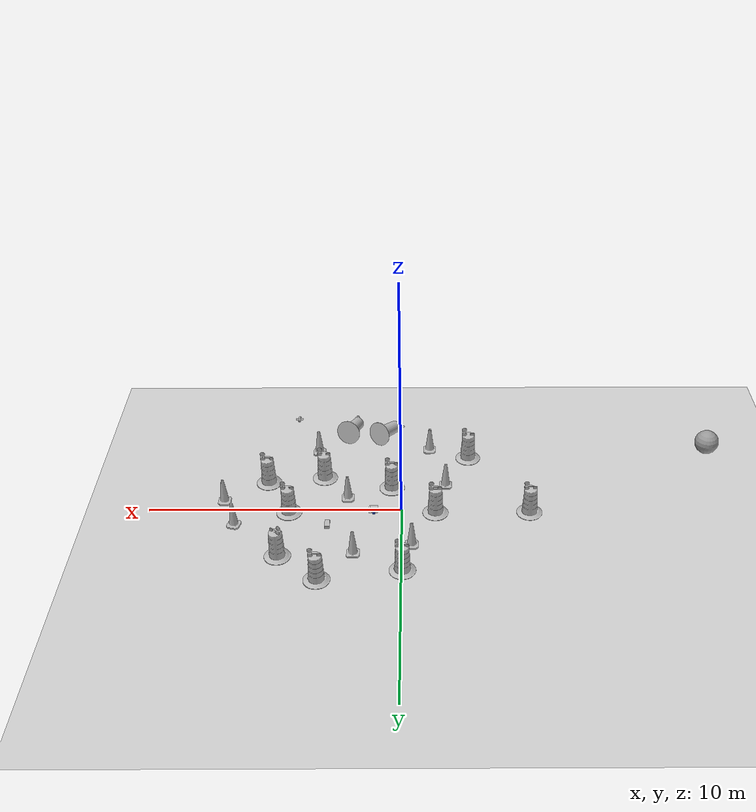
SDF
<sdf version="1.7">
 <world name="default">
  <light name="sun" type="directional">
   <pose>0 0 10 0 -0 0</pose>
   <diffuse>0.8 0.8 0.8 1</diffuse>
   <specular>0.2 0.2 0.2 1</specular>
   <attenuation>
    <range>1000</range>
    <constant>0.9</constant>
    <linear>0.01</linear>
    <quadratic>0.001</quadratic>
   </attenuation>
   <direction>-0.5 0.1 -0.9</direction>
   <spot><inner_angle>0</inner_angle><outer_angle>0</outer_angle><falloff>0</falloff></spot>
  </light>
  <model name="ground_plane">
   <static>1</static>
   <link name="link">
    <collision name="collision">
     <geometry><plane><normal>0 0 1</normal><size>100 100</size></plane></geometry>
     <surface><friction><ode><mu>100</mu><mu2>50</mu2></ode></friction></surface>
    </collision>
    <visual name="visual">
     <cast_shadows>0</cast_shadows>
     <geometry><plane><normal>0 0 1</normal><size>100 100</size></plane></geometry>
     <material>
      <script><uri>file://media/materials/scripts/gazebo.material</uri><name>Gazebo/Grey</name></script>
     </material>
    </visual>
   </link>
  </model>
  <gravity>0 0 -9.8</gravity>
  <magnetic_field>6e-06 2.3e-05 -4.2e-05</magnetic_field>
  <atmosphere type="adiabatic"/>
  <physics type="ode">
   <max_step_size>0.001</max_step_size>
   <real_time_factor>1</real_time_factor>
   <real_time_update_rate>1000</real_time_update_rate>
  </physics>
  <scene><ambient>0.4 0.4 0.4 1</ambient><background>0.7 0.7 0.7 1</background><shadows>1</shadows></scene>
  <audio><device>default</device></audio>
  <spherical_coordinates>
   <surface_model>EARTH_WGS84</surface_model>
   <latitude_deg>0</latitude_deg>
   <longitude_deg>0</longitude_deg>
   <elevation>0</elevation>
   <heading_deg>0</heading_deg>
  </spherical_coordinates>
  <model name="my_bot">
   <link name="base_link">
    <inertial>
     <pose>0.065 0 0.0625 0 -0 0</pose>
     <mass>0.6</mass>
     <inertia>
      <ixx>0.00525625</ixx>
      <ixy>0</ixy>
      <ixz>0.0005625</ixz>
      <iyy>0.00593125</iyy>
      <iyz>0</iyz>
      <izz>0.008275</izz>
     </inertia>
    </inertial>
    <collision name="base_link_fixed_joint_lump__chassis_collision">
     <pose>0.05 0 0.075 0 -0 0</pose>
     <geometry><box><size>0.3 0.3 0.15</size></box></geometry>
    </collision>
    <collision name="base_link_fixed_joint_lump__caster_wheel_collision_1">
     <pose>0.14 0 0 0 -0 0</pose>
     <geometry><sphere><radius>0.05</radius></sphere></geometry>
     <surface><friction><ode><mu>0.001</mu><mu2>0.001</mu2></ode></friction></surface>
    </collision>
    <visual name="base_link_visual">
     <pose>0 0 0.075 0 -0 0</pose>
     <geometry><box><size>0.3 0.3 0.15</size></box></geometry>
    </visual>
    <visual name="base_link_fixed_joint_lump__chassis_visual_1">
     <pose>0.05 0 0.075 0 -0 0</pose>
     <geometry><box><size>0.3 0.3 0.15</size></box></geometry>
     <material>
      <script><name>Gazebo/white</name><uri>file://media/materials/scripts/gazebo.material</uri></script>
     </material>
    </visual>
    <visual name="base_link_fixed_joint_lump__caster_wheel_visual_2">
     <pose>0.14 0 0 0 -0 0</pose>
     <geometry><sphere><radius>0.05</radius></sphere></geometry>
     <material>
      <script><name>Gazebo/Black</name><uri>file://media/materials/scripts/gazebo.material</uri></script>
     </material>
    </visual>
   </link>
   <joint name="left_wheel_joint" type="revolute">
    <pose relative_to="base_link">0 0.175 0 -1.5708 0 0</pose>
    <parent>base_link</parent>
    <child>left_wheel</child>
    <axis>
     <xyz>0 0 1</xyz>
     <limit><lower>-1e+16</lower><upper>1e+16</upper></limit>
     <dynamics><spring_reference>0</spring_reference><spring_stiffness>0</spring_stiffness></dynamics>
    </axis>
   </joint>
   <link name="left_wheel">
    <pose relative_to="left_wheel_joint">0 0 0 0 -0 0</pose>
    <inertial>
     <mass>0.1</mass>
     <inertia>
      <ixx>7.58333e-05</ixx>
      <ixy>0</ixy>
      <ixz>0</ixz>
      <iyy>7.58333e-05</iyy>
      <iyz>0</iyz>
      <izz>0.000125</izz>
     </inertia>
    </inertial>
    <collision name="left_wheel_collision">
     <geometry><cylinder><length>0.04</length><radius>0.05</radius></cylinder></geometry>
    </collision>
    <visual name="left_wheel_visual">
     <geometry><cylinder><length>0.04</length><radius>0.05</radius></cylinder></geometry>
     <material>
      <script><name>Gazebo/Blue</name><uri>file://media/materials/scripts/gazebo.material</uri></script>
     </material>
    </visual>
   </link>
   <joint name="right_wheel_joint" type="revolute">
    <pose relative_to="base_link">0 -0.175 0 1.5708 -0 0</pose>
    <parent>base_link</parent>
    <child>right_wheel</child>
    <axis>
     <xyz>0 0 -1</xyz>
     <limit><lower>-1e+16</lower><upper>1e+16</upper></limit>
     <dynamics><spring_reference>0</spring_reference><spring_stiffness>0</spring_stiffness></dynamics>
    </axis>
   </joint>
   <link name="right_wheel">
    <pose relative_to="right_wheel_joint">0 0 0 0 -0 0</pose>
    <inertial>
     <mass>0.1</mass>
     <inertia>
      <ixx>7.58333e-05</ixx>
      <ixy>0</ixy>
      <ixz>0</ixz>
      <iyy>7.58333e-05</iyy>
      <iyz>0</iyz>
      <izz>0.000125</izz>
     </inertia>
    </inertial>
    <collision name="right_wheel_collision">
     <geometry><cylinder><length>0.04</length><radius>0.05</radius></cylinder></geometry>
    </collision>
    <visual name="right_wheel_visual">
     <geometry><cylinder><length>0.04</length><radius>0.05</radius></cylinder></geometry>
     <material>
      <script><name>Gazebo/Blue</name><uri>file://media/materials/scripts/gazebo.material</uri></script>
     </material>
    </visual>
   </link>
   <static>0</static>
   <plugin name="diff_drive" filename="libgazebo_ros_diff_drive.so">
    <left_joint>left_wheel_joint</left_joint>
    <right_joint>right_wheel_joint</right_joint>
    <wheel_seperation>0.35</wheel_seperation>
    <wheel_diameter>0.1</wheel_diameter>
    <max_wheel_torque>200</max_wheel_torque>
    <max_wheel_acceleration>10.0</max_wheel_acceleration>
    <odometery_frame>odom</odometery_frame>
    <robot_base_frame>base link</robot_base_frame>
    <publish_odom>1</publish_odom>
    <publish_odom_tf>1</publish_odom_tf>
    <publish_wheel_tf>1</publish_wheel_tf>
   </plugin>
   <pose>1.09208 0.079149 0.05 -0 1e-06 -0.02029</pose>
  </model>
  <model name="cinder_block_2">
   <link name="link">
    <inertial>
     <pose>0 0 0.071438 0 -0 0</pose>
     <mass>5</mass>
     <inertia>
      <ixx>0.06908</ixx>
      <ixy>0</ixy>
      <iyy>0.028705</iyy>
      <ixz>0</ixz>
      <iyz>0</iyz>
      <izz>0.073708</izz>
     </inertia>
    </inertial>
    <visual name="visual">
     <geometry><mesh><uri>model://cinder_block_2/meshes/cinder_block.dae</uri></mesh></geometry>
    </visual>
    <collision name="top">
     <pose>0 0 0.130175 0 -0 0</pose>
     <geometry><box><size>0.19368 0.396875 0.0254</size></box></geometry>
     <surface>
      <contact><ode><max_vel>0.1</max_vel><min_depth>0.001</min_depth></ode></contact>
      <friction><ode><mu>1</mu><mu2>1</mu2></ode></friction>
     </surface>
    </collision>
    <collision name="bottom">
     <pose>0 0 0.0127 0 -0 0</pose>
     <geometry><box><size>0.19368 0.396875 0.0254</size></box></geometry>
     <surface>
      <contact><ode><max_vel>0.1</max_vel><min_depth>0.001</min_depth></ode></contact>
      <friction><ode><mu>1</mu><mu2>1</mu2></ode></friction>
     </surface>
    </collision>
    <collision name="left">
     <pose>0 -0.185738 0.071438 0 -0 0</pose>
     <geometry><box><size>0.19368 0.0254 0.092075</size></box></geometry>
     <surface>
      <contact><ode><max_vel>0.1</max_vel><min_depth>0.001</min_depth></ode></contact>
      <friction><ode><mu>1</mu><mu2>1</mu2></ode></friction>
     </surface>
    </collision>
    <collision name="right">
     <pose>0 0.185738 0.071438 0 -0 0</pose>
     <geometry><box><size>0.19368 0.0254 0.092075</size></box></geometry>
     <surface>
      <contact><ode><max_vel>0.1</max_vel><min_depth>0.001</min_depth></ode></contact>
      <friction><ode><mu>1</mu><mu2>1</mu2></ode></friction>
     </surface>
    </collision>
    <collision name="middle">
     <pose>0 0 0.071438 0 -0 0</pose>
     <geometry><box><size>0.19368 0.0254 0.092075</size></box></geometry>
     <surface>
      <contact><ode><max_vel>0.1</max_vel><min_depth>0.001</min_depth></ode></contact>
      <friction><ode><mu>1</mu><mu2>1</mu2></ode></friction>
     </surface>
    </collision>
   </link>
   <pose>2.8993 0.938726 -1.1e-05 0 -0 0</pose>
  </model>
  <model name="Construction Barrel">
   <link name="link">
    <inertial>
     <pose>0 0 0.4 0 -0 0</pose>
     <mass>500</mass>
     <inertia><ixx>51.2096</ixx><iyy>51.2096</iyy><izz>25</izz><ixy>0</ixy><ixz>0</ixz><iyz>0</iyz></inertia>
    </inertial>
    <collision name="collision">
     <geometry><mesh><uri>model://construction_barrel/meshes/construction_barrel.dae</uri></mesh></geometry>
    </collision>
    <visual name="visual">
     <geometry><mesh><uri>model://construction_barrel/meshes/construction_barrel.dae</uri></mesh></geometry>
    </visual>
   </link>
   <pose>4.66955 2.74269 -0 0 -0 2.57465</pose>
  </model>
  <model name="Construction Cone">
   <link name="link">
    <collision name="collision">
     <geometry>
      <mesh><scale>10 10 10</scale><uri>model://construction_cone/meshes/construction_cone.dae</uri></mesh>
     </geometry>
    </collision>
    <visual name="visual">
     <geometry>
      <mesh><scale>10 10 10</scale><uri>model://construction_cone/meshes/construction_cone.dae</uri></mesh>
     </geometry>
    </visual>
    <inertial>
     <inertia><ixx>1</ixx><ixy>0</ixy><ixz>0</ixz><iyy>1</iyy><iyz>0</iyz><izz>1</izz></inertia>
     <mass>1</mass>
    </inertial>
   </link>
   <pose>6.54 0.900403 -0 -0 -1e-06 -0.261169</pose>
  </model>
  <model name="cross_joint_part">
   <link name="link">
    <inertial>
     <pose>0 0 0.048275 0 -0 0</pose>
     <mass>0.5</mass>
     <inertia>
      <ixx>0.00455435</ixx>
      <ixy>0</ixy>
      <ixz>0</ixz>
      <iyy>0.00455435</iyy>
      <iyz>0</iyz>
      <izz>0.00833187</izz>
     </inertia>
    </inertial>
    <collision name="collisionY">
     <pose>0 0 0.048275 1.5707 -0 0</pose>
     <geometry><cylinder><length>0.3162</length><radius>0.0483</radius></cylinder></geometry>
    </collision>
    <collision name="collisionX">
     <pose>0 0 0.048275 0 1.5707 0</pose>
     <geometry><cylinder><length>0.3162</length><radius>0.0483</radius></cylinder></geometry>
    </collision>
    <visual name="visual">
     <geometry><mesh><uri>model://cross_joint_part/meshes/cross_joint.dae</uri></mesh></geometry>
     <material>
      <script>
       <uri>model://arm_part/materials/scripts</uri>
       <uri>model://arm_part/materials/textures</uri>
       <name>ArmPart/Diffuse</name>
      </script>
     </material>
    </visual>
   </link>
   <pose>4.54997 -6.30753 2e-05 6.4e-05 0.000129 0</pose>
  </model>
  <model name="Construction Barrel_0">
   <link name="link">
    <inertial>
     <pose>0 0 0.4 0 -0 0</pose>
     <mass>500</mass>
     <inertia><ixx>51.2096</ixx><iyy>51.2096</iyy><izz>25</izz><ixy>0</ixy><ixz>0</ixz><iyz>0</iyz></inertia>
    </inertial>
    <collision name="collision">
     <geometry><mesh><uri>model://construction_barrel/meshes/construction_barrel.dae</uri></mesh></geometry>
    </collision>
    <visual name="visual">
     <geometry><mesh><uri>model://construction_barrel/meshes/construction_barrel.dae</uri></mesh></geometry>
    </visual>
   </link>
   <pose>2.30526 -4.65157 0.497931 1.92081 -0.885859 -0.608488</pose>
  </model>
  <model name="Construction Barrel_0_clone">
   <link name="link">
    <inertial>
     <pose>0 0 0.4 0 -0 0</pose>
     <mass>500</mass>
     <inertia><ixx>51.2096</ixx><iyy>51.2096</iyy><izz>25</izz><ixy>0</ixy><ixz>0</ixz><iyz>0</iyz></inertia>
    </inertial>
    <collision name="collision">
     <geometry><mesh><uri>model://construction_barrel/meshes/construction_barrel.dae</uri></mesh></geometry>
    </collision>
    <visual name="visual">
     <geometry><mesh><uri>model://construction_barrel/meshes/construction_barrel.dae</uri></mesh></geometry>
    </visual>
   </link>
   <pose>0.979413 -4.53454 0.49794 -1.79132 0.127765 2.48869</pose>
  </model>
  <model name="Construction Barrel_1">
   <link name="link">
    <inertial>
     <pose>0 0 0.4 0 -0 0</pose>
     <mass>500</mass>
     <inertia><ixx>51.2096</ixx><iyy>51.2096</iyy><izz>25</izz><ixy>0</ixy><ixz>0</ixz><iyz>0</iyz></inertia>
    </inertial>
    <collision name="collision">
     <geometry><mesh><uri>model://construction_barrel/meshes/construction_barrel.dae</uri></mesh></geometry>
    </collision>
    <visual name="visual">
     <geometry><mesh><uri>model://construction_barrel/meshes/construction_barrel.dae</uri></mesh></geometry>
    </visual>
   </link>
   <pose>3.15602 -2.09868 1e-06 3e-06 2e-06 -3.7e-05</pose>
  </model>
  <model name="Construction Barrel_2">
   <link name="link">
    <inertial>
     <pose>0 0 0.4 0 -0 0</pose>
     <mass>500</mass>
     <inertia><ixx>51.2096</ixx><iyy>51.2096</iyy><izz>25</izz><ixy>0</ixy><ixz>0</ixz><iyz>0</iyz></inertia>
    </inertial>
    <collision name="collision">
     <geometry><mesh><uri>model://construction_barrel/meshes/construction_barrel.dae</uri></mesh></geometry>
    </collision>
    <visual name="visual">
     <geometry><mesh><uri>model://construction_barrel/meshes/construction_barrel.dae</uri></mesh></geometry>
    </visual>
   </link>
   <pose>4.44699 0.134658 1e-06 3e-06 2e-06 -3.5e-05</pose>
  </model>
  <model name="Construction Cone_0">
   <link name="link">
    <collision name="collision">
     <geometry>
      <mesh><scale>10 10 10</scale><uri>model://construction_cone/meshes/construction_cone.dae</uri></mesh>
     </geometry>
    </collision>
    <visual name="visual">
     <geometry>
      <mesh><scale>10 10 10</scale><uri>model://construction_cone/meshes/construction_cone.dae</uri></mesh>
     </geometry>
    </visual>
    <inertial>
     <inertia><ixx>1</ixx><ixy>0</ixy><ixz>0</ixz><iyy>1</iyy><iyz>0</iyz><izz>1</izz></inertia>
     <mass>1</mass>
    </inertial>
   </link>
   <pose>1.82093 2.6123 -5e-06 -4e-06 1e-06 0</pose>
  </model>
  <model name="Construction Barrel_3">
   <link name="link">
    <inertial>
     <pose>0 0 0.4 0 -0 0</pose>
     <mass>500</mass>
     <inertia><ixx>51.2096</ixx><iyy>51.2096</iyy><izz>25</izz><ixy>0</ixy><ixz>0</ixz><iyz>0</iyz></inertia>
    </inertial>
    <collision name="collision">
     <geometry><mesh><uri>model://construction_barrel/meshes/construction_barrel.dae</uri></mesh></geometry>
    </collision>
    <visual name="visual">
     <geometry><mesh><uri>model://construction_barrel/meshes/construction_barrel.dae</uri></mesh></geometry>
    </visual>
   </link>
   <pose>0.397847 -1.41409 1e-06 3e-06 2e-06 -3.2e-05</pose>
  </model>
  <model name="Construction Cone_1">
   <link name="link">
    <collision name="collision">
     <geometry>
      <mesh><scale>10 10 10</scale><uri>model://construction_cone/meshes/construction_cone.dae</uri></mesh>
     </geometry>
    </collision>
    <visual name="visual">
     <geometry>
      <mesh><scale>10 10 10</scale><uri>model://construction_cone/meshes/construction_cone.dae</uri></mesh>
     </geometry>
    </visual>
    <inertial>
     <inertia><ixx>1</ixx><ixy>0</ixy><ixz>0</ixz><iyy>1</iyy><iyz>0</iyz><izz>1</izz></inertia>
     <mass>1</mass>
    </inertial>
   </link>
   <pose>2.15932 -0.755705 -0 0 -0 0</pose>
  </model>
  <model name="Construction Barrel_4">
   <link name="link">
    <inertial>
     <pose>0 0 0.4 0 -0 0</pose>
     <mass>500</mass>
     <inertia><ixx>51.2096</ixx><iyy>51.2096</iyy><izz>25</izz><ixy>0</ixy><ixz>0</ixz><iyz>0</iyz></inertia>
    </inertial>
    <collision name="collision">
     <geometry><mesh><uri>model://construction_barrel/meshes/construction_barrel.dae</uri></mesh></geometry>
    </collision>
    <visual name="visual">
     <geometry><mesh><uri>model://construction_barrel/meshes/construction_barrel.dae</uri></mesh></geometry>
    </visual>
   </link>
   <pose>-1.33584 0.175892 1e-06 3e-06 2e-06 -2.8e-05</pose>
  </model>
  <model name="Construction Cone_2">
   <link name="link">
    <collision name="collision">
     <geometry>
      <mesh><scale>10 10 10</scale><uri>model://construction_cone/meshes/construction_cone.dae</uri></mesh>
     </geometry>
    </collision>
    <visual name="visual">
     <geometry>
      <mesh><scale>10 10 10</scale><uri>model://construction_cone/meshes/construction_cone.dae</uri></mesh>
     </geometry>
    </visual>
    <inertial>
     <inertia><ixx>1</ixx><ixy>0</ixy><ixz>0</ixz><iyy>1</iyy><iyz>0</iyz><izz>1</izz></inertia>
     <mass>1</mass>
    </inertial>
   </link>
   <pose>-1.77138 -1.56714 -0 0 -0 0</pose>
  </model>
  <model name="Construction Barrel_5">
   <link name="link">
    <inertial>
     <pose>0 0 0.4 0 -0 0</pose>
     <mass>500</mass>
     <inertia><ixx>51.2096</ixx><iyy>51.2096</iyy><izz>25</izz><ixy>0</ixy><ixz>0</ixz><iyz>0</iyz></inertia>
    </inertial>
    <collision name="collision">
     <geometry><mesh><uri>model://construction_barrel/meshes/construction_barrel.dae</uri></mesh></geometry>
    </collision>
    <visual name="visual">
     <geometry><mesh><uri>model://construction_barrel/meshes/construction_barrel.dae</uri></mesh></geometry>
    </visual>
   </link>
   <pose>5.42824 -1.78739 1e-06 3e-06 2e-06 -2.6e-05</pose>
  </model>
  <model name="Construction Barrel_6">
   <link name="link">
    <inertial>
     <pose>0 0 0.4 0 -0 0</pose>
     <mass>500</mass>
     <inertia><ixx>51.2096</ixx><iyy>51.2096</iyy><izz>25</izz><ixy>0</ixy><ixz>0</ixz><iyz>0</iyz></inertia>
    </inertial>
    <collision name="collision">
     <geometry><mesh><uri>model://construction_barrel/meshes/construction_barrel.dae</uri></mesh></geometry>
    </collision>
    <visual name="visual">
     <geometry><mesh><uri>model://construction_barrel/meshes/construction_barrel.dae</uri></mesh></geometry>
    </visual>
   </link>
   <pose>3.10583 4.05917 1e-06 3e-06 2e-06 -2.3e-05</pose>
  </model>
  <model name="Construction Cone_3">
   <link name="link">
    <collision name="collision">
     <geometry>
      <mesh><scale>10 10 10</scale><uri>model://construction_cone/meshes/construction_cone.dae</uri></mesh>
     </geometry>
    </collision>
    <visual name="visual">
     <geometry>
      <mesh><scale>10 10 10</scale><uri>model://construction_cone/meshes/construction_cone.dae</uri></mesh>
     </geometry>
    </visual>
    <inertial>
     <inertia><ixx>1</ixx><ixy>0</ixy><ixz>0</ixz><iyy>1</iyy><iyz>0</iyz><izz>1</izz></inertia>
     <mass>1</mass>
    </inertial>
   </link>
   <pose>-0.399986 2.12528 -0 0 -0 0</pose>
  </model>
  <model name="Construction Cone_4">
   <link name="link">
    <collision name="collision">
     <geometry>
      <mesh><scale>10 10 10</scale><uri>model://construction_cone/meshes/construction_cone.dae</uri></mesh>
     </geometry>
    </collision>
    <visual name="visual">
     <geometry>
      <mesh><scale>10 10 10</scale><uri>model://construction_cone/meshes/construction_cone.dae</uri></mesh>
     </geometry>
    </visual>
    <inertial>
     <inertia><ixx>1</ixx><ixy>0</ixy><ixz>0</ixz><iyy>1</iyy><iyz>0</iyz><izz>1</izz></inertia>
     <mass>1</mass>
    </inertial>
   </link>
   <pose>-1.16023 -4.02311 -0 0 -0 0</pose>
  </model>
  <model name="Construction Barrel_7">
   <link name="link">
    <inertial>
     <pose>0 0 0.4 0 -0 0</pose>
     <mass>500</mass>
     <inertia><ixx>51.2096</ixx><iyy>51.2096</iyy><izz>25</izz><ixy>0</ixy><ixz>0</ixz><iyz>0</iyz></inertia>
    </inertial>
    <collision name="collision">
     <geometry><mesh><uri>model://construction_barrel/meshes/construction_barrel.dae</uri></mesh></geometry>
    </collision>
    <visual name="visual">
     <geometry><mesh><uri>model://construction_barrel/meshes/construction_barrel.dae</uri></mesh></geometry>
    </visual>
   </link>
   <pose>-2.75659 -3.45131 1e-06 3e-06 2e-06 -2e-05</pose>
  </model>
  <model name="Construction Cone_5">
   <link name="link">
    <collision name="collision">
     <geometry>
      <mesh><scale>10 10 10</scale><uri>model://construction_cone/meshes/construction_cone.dae</uri></mesh>
     </geometry>
    </collision>
    <visual name="visual">
     <geometry>
      <mesh><scale>10 10 10</scale><uri>model://construction_cone/meshes/construction_cone.dae</uri></mesh>
     </geometry>
    </visual>
    <inertial>
     <inertia><ixx>1</ixx><ixy>0</ixy><ixz>0</ixz><iyy>1</iyy><iyz>0</iyz><izz>1</izz></inertia>
     <mass>1</mass>
    </inertial>
   </link>
   <pose>3.49789 -3.88327 -0 0 -0 0</pose>
  </model>
  <model name="Construction Barrel_8">
   <link name="link">
    <inertial>
     <pose>0 0 0.4 0 -0 0</pose>
     <mass>500</mass>
     <inertia><ixx>51.2096</ixx><iyy>51.2096</iyy><izz>25</izz><ixy>0</ixy><ixz>0</ixz><iyz>0</iyz></inertia>
    </inertial>
    <collision name="collision">
     <geometry><mesh><uri>model://construction_barrel/meshes/construction_barrel.dae</uri></mesh></geometry>
    </collision>
    <visual name="visual">
     <geometry><mesh><uri>model://construction_barrel/meshes/construction_barrel.dae</uri></mesh></geometry>
    </visual>
   </link>
   <pose>-0.054634 3.55346 -2e-06 8e-06 -4e-06 -1.7e-05</pose>
  </model>
  <model name="Construction Cone_6">
   <link name="link">
    <collision name="collision">
     <geometry>
      <mesh><scale>10 10 10</scale><uri>model://construction_cone/meshes/construction_cone.dae</uri></mesh>
     </geometry>
    </collision>
    <visual name="visual">
     <geometry>
      <mesh><scale>10 10 10</scale><uri>model://construction_cone/meshes/construction_cone.dae</uri></mesh>
     </geometry>
    </visual>
    <inertial>
     <inertia><ixx>1</ixx><ixy>0</ixy><ixz>0</ixz><iyy>1</iyy><iyz>0</iyz><izz>1</izz></inertia>
     <mass>1</mass>
    </inertial>
   </link>
   <pose>7.08549 -0.566759 0 -0 -0 -0</pose>
  </model>
  <model name="Construction Barrel_9">
   <link name="link">
    <inertial>
     <pose>0 0 0.4 0 -0 0</pose>
     <mass>500</mass>
     <inertia><ixx>51.2096</ixx><iyy>51.2096</iyy><izz>25</izz><ixy>0</ixy><ixz>0</ixz><iyz>0</iyz></inertia>
    </inertial>
    <collision name="collision">
     <geometry><mesh><uri>model://construction_barrel/meshes/construction_barrel.dae</uri></mesh></geometry>
    </collision>
    <visual name="visual">
     <geometry><mesh><uri>model://construction_barrel/meshes/construction_barrel.dae</uri></mesh></geometry>
    </visual>
   </link>
   <pose>-5.05129 0.166568 -0 0 -0 -0.002072</pose>
  </model>
  <light name="user_spot_light_0" type="spot">
   <pose>0.926248 -0.133869 1 0 -0 0</pose>
   <diffuse>0.5 0.5 0.5 1</diffuse>
   <specular>0.1 0.1 0.1 1</specular>
   <direction>0 0 -1</direction>
   <attenuation>
    <range>20</range>
    <constant>0.5</constant>
    <linear>0.01</linear>
    <quadratic>0.001</quadratic>
   </attenuation>
   <cast_shadows>0</cast_shadows>
   <spot><inner_angle>0.6</inner_angle><outer_angle>1</outer_angle><falloff>1</falloff></spot>
  </light>
  <light name="user_point_light_0" type="point">
   <pose>0.140345 -6.96814 1 0 -0 0</pose>
   <diffuse>0.5 0.5 0.5 1</diffuse>
   <specular>0.1 0.1 0.1 1</specular>
   <attenuation>
    <range>20</range>
    <constant>0.5</constant>
    <linear>0.01</linear>
    <quadratic>0.001</quadratic>
   </attenuation>
   <cast_shadows>0</cast_shadows>
   <direction>0 0 -1</direction>
  </light>
  <light name="user_point_light_1" type="point">
   <pose>1.63941 5.54294 1 0 -0 0</pose>
   <diffuse>0.5 0.5 0.5 1</diffuse>
   <specular>0.1 0.1 0.1 1</specular>
   <attenuation>
    <range>20</range>
    <constant>0.5</constant>
    <linear>0.01</linear>
    <quadratic>0.001</quadratic>
   </attenuation>
   <cast_shadows>0</cast_shadows>
   <direction>0 0 -1</direction>
  </light>
  <light name="user_point_light_2" type="point">
   <pose>-4.9513 2.58909 1 0 -0 0</pose>
   <diffuse>0.5 0.5 0.5 1</diffuse>
   <specular>0.1 0.1 0.1 1</specular>
   <attenuation>
    <range>20</range>
    <constant>0.5</constant>
    <linear>0.01</linear>
    <quadratic>0.001</quadratic>
   </attenuation>
   <cast_shadows>0</cast_shadows>
   <direction>0 0 -1</direction>
  </light>
  <light name="user_point_light_3" type="point">
   <pose>8.89444 -3.81576 1 0 -0 0</pose>
   <diffuse>0.5 0.5 0.5 1</diffuse>
   <specular>0.1 0.1 0.1 1</specular>
   <attenuation>
    <range>20</range>
    <constant>0.5</constant>
    <linear>0.01</linear>
    <quadratic>0.001</quadratic>
   </attenuation>
   <cast_shadows>0</cast_shadows>
   <direction>0 0 -1</direction>
  </light>
  <model name="unit_sphere">
   <pose>-12.8601 -3.88924 0.5 0 -0 0</pose>
   <link name="link">
    <inertial>
     <mass>1</mass>
     <inertia><ixx>0.1</ixx><ixy>0</ixy><ixz>0</ixz><iyy>0.1</iyy><iyz>0</iyz><izz>0.1</izz></inertia>
    </inertial>
    <collision name="collision"><geometry><sphere><radius>0.5</radius></sphere></geometry></collision>
    <visual name="visual">
     <geometry><sphere><radius>0.5</radius></sphere></geometry>
     <material>
      <script><name>Gazebo/Grey</name><uri>file://media/materials/scripts/gazebo.material</uri></script>
     </material>
    </visual>
   </link>
  </model>
 </world>
</sdf>
